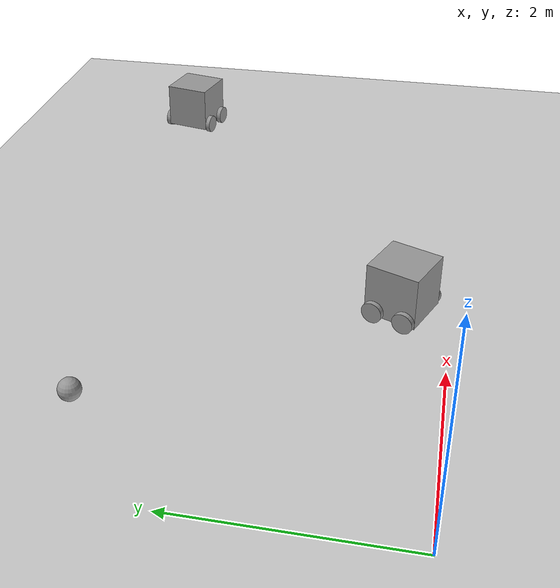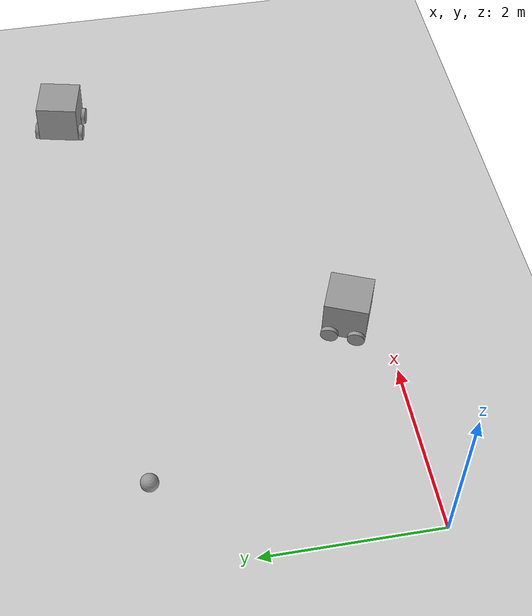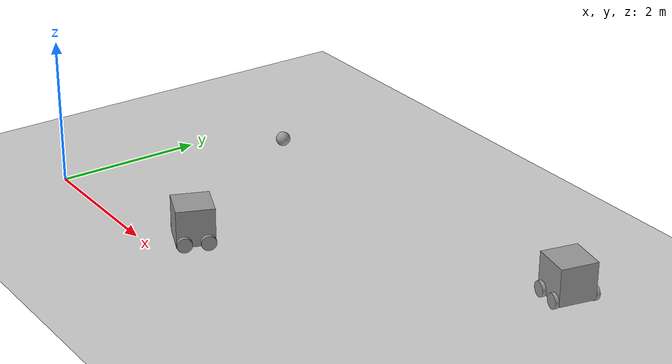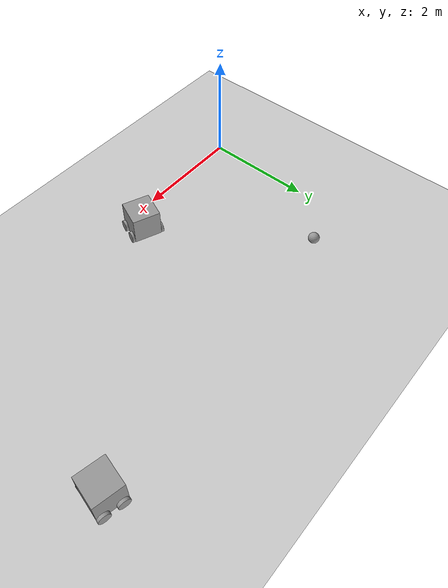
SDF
<sdf version="1.6">
 <world name="default">
  <model name="ground_plane">
   <static>1</static>
   <link name="link">
    <collision name="collision">
     <geometry><plane><normal>0 0 1</normal><size>100 100</size></plane></geometry>
     <surface><friction><ode><mu>100</mu><mu2>50</mu2></ode></friction></surface>
    </collision>
    <visual name="visual">
     <cast_shadows>0</cast_shadows>
     <geometry><plane><normal>0 0 1</normal><size>100 100</size></plane></geometry>
     <material>
      <script><uri>file://media/materials/scripts/gazebo.material</uri><name>Gazebo/Grey</name></script>
     </material>
    </visual>
   </link>
  </model>
  <model name="Model">
   <link name="link_0">
    <pose>0.074923 -0.135492 0.11601 0 0.01074 0</pose>
    <inertial>
     <mass>1</mass>
     <inertia>
      <ixx>0.166667</ixx>
      <ixy>0</ixy>
      <ixz>0</ixz>
      <iyy>0.166667</iyy>
      <iyz>0</iyz>
      <izz>0.166667</izz>
     </inertia>
    </inertial>
    <visual name="visual">
     <geometry><box><size>0.5 0.5 0.5</size></box></geometry>
     <material>
      <lighting>1</lighting>
      <script><uri>file://media/materials/scripts/gazebo.material</uri><name>Gazebo/Grey</name></script>
      <ambient>0.3 0.3 0.3 1</ambient>
      <diffuse>0.7 0.7 0.7 1</diffuse>
      <specular>0.01 0.01 0.01 1</specular>
      <emissive>0 0 0 1</emissive>
      <shader type="vertex"><normal_map>__default__</normal_map></shader>
     </material>
    </visual>
    <collision name="collision">
     <geometry><box><size>0.5 0.5 0.5</size></box></geometry>
     <surface>
      <friction>
       <ode><mu>1</mu><mu2>1</mu2><fdir1>0 0 0</fdir1><slip1>0</slip1><slip2>0</slip2></ode>
       <torsional>
        <coefficient>1</coefficient>
        <patch_radius>0</patch_radius>
        <surface_radius>0</surface_radius>
        <use_patch_radius>1</use_patch_radius>
        <ode><slip>0</slip></ode>
       </torsional>
      </friction>
      <bounce><restitution_coefficient>0</restitution_coefficient><threshold>1e+06</threshold></bounce>
      <contact>
       <collide_without_contact>0</collide_without_contact>
       <collide_without_contact_bitmask>1</collide_without_contact_bitmask>
       <collide_bitmask>1</collide_bitmask>
       <ode>
        <soft_cfm>0</soft_cfm>
        <soft_erp>0.2</soft_erp>
        <kp>1e+13</kp>
        <kd>1</kd>
        <max_vel>0.01</max_vel>
        <min_depth>0</min_depth>
       </ode>
       <bullet>
        <split_impulse>1</split_impulse>
        <split_impulse_penetration_threshold>-0.01</split_impulse_penetration_threshold>
        <soft_cfm>0</soft_cfm>
        <soft_erp>0.2</soft_erp>
        <kp>1e+13</kp>
        <kd>1</kd>
       </bullet>
      </contact>
     </surface>
    </collision>
   </link>
   <link name="link_1">
    <pose>-0.078239 -0.410505 -0.082356 1.5707 -0 0</pose>
    <inertial>
     <mass>1</mass>
     <inertia><ixx>0.145833</ixx><ixy>0</ixy><ixz>0</ixz><iyy>0.145833</iyy><iyz>0</iyz><izz>0.125</izz></inertia>
    </inertial>
    <visual name="visual">
     <geometry><cylinder><radius>0.1</radius><length>0.05</length></cylinder></geometry>
     <material>
      <lighting>1</lighting>
      <script><uri>file://media/materials/scripts/gazebo.material</uri><name>Gazebo/Grey</name></script>
      <ambient>0.3 0.3 0.3 1</ambient>
      <diffuse>0.7 0.7 0.7 1</diffuse>
      <specular>0.01 0.01 0.01 1</specular>
      <emissive>0 0 0 1</emissive>
      <shader type="vertex"><normal_map>__default__</normal_map></shader>
     </material>
    </visual>
    <collision name="collision">
     <geometry><cylinder><radius>0.1</radius><length>0.05</length></cylinder></geometry>
     <surface>
      <friction>
       <ode><mu>1</mu><mu2>1</mu2><fdir1>0 0 0</fdir1><slip1>0</slip1><slip2>0</slip2></ode>
       <torsional>
        <coefficient>1</coefficient>
        <patch_radius>0</patch_radius>
        <surface_radius>0</surface_radius>
        <use_patch_radius>1</use_patch_radius>
        <ode><slip>0</slip></ode>
       </torsional>
      </friction>
      <bounce><restitution_coefficient>0</restitution_coefficient><threshold>1e+06</threshold></bounce>
      <contact>
       <collide_without_contact>0</collide_without_contact>
       <collide_without_contact_bitmask>1</collide_without_contact_bitmask>
       <collide_bitmask>1</collide_bitmask>
       <ode>
        <soft_cfm>0</soft_cfm>
        <soft_erp>0.2</soft_erp>
        <kp>1e+13</kp>
        <kd>1</kd>
        <max_vel>0.01</max_vel>
        <min_depth>0</min_depth>
       </ode>
       <bullet>
        <split_impulse>1</split_impulse>
        <split_impulse_penetration_threshold>-0.01</split_impulse_penetration_threshold>
        <soft_cfm>0</soft_cfm>
        <soft_erp>0.2</soft_erp>
        <kp>1e+13</kp>
        <kd>1</kd>
       </bullet>
      </contact>
     </surface>
    </collision>
   </link>
   <link name="link_1_clone">
    <pose>0.227067 -0.410502 -0.085635 1.5707 -0 0</pose>
    <inertial>
     <mass>1</mass>
     <inertia><ixx>0.145833</ixx><ixy>0</ixy><ixz>0</ixz><iyy>0.145833</iyy><iyz>0</iyz><izz>0.125</izz></inertia>
    </inertial>
    <visual name="visual">
     <geometry><cylinder><radius>0.1</radius><length>0.05</length></cylinder></geometry>
     <material>
      <lighting>1</lighting>
      <script><uri>file://media/materials/scripts/gazebo.material</uri><name>Gazebo/Grey</name></script>
      <ambient>0.3 0.3 0.3 1</ambient>
      <diffuse>0.7 0.7 0.7 1</diffuse>
      <specular>0.01 0.01 0.01 1</specular>
      <emissive>0 0 0 1</emissive>
      <shader type="vertex"><normal_map>__default__</normal_map></shader>
     </material>
    </visual>
    <collision name="collision">
     <geometry><cylinder><radius>0.1</radius><length>0.05</length></cylinder></geometry>
     <surface>
      <friction>
       <ode><mu>1</mu><mu2>1</mu2><fdir1>0 0 0</fdir1><slip1>0</slip1><slip2>0</slip2></ode>
       <torsional>
        <coefficient>1</coefficient>
        <patch_radius>0</patch_radius>
        <surface_radius>0</surface_radius>
        <use_patch_radius>1</use_patch_radius>
        <ode><slip>0</slip></ode>
       </torsional>
      </friction>
      <bounce><restitution_coefficient>0</restitution_coefficient><threshold>1e+06</threshold></bounce>
      <contact>
       <collide_without_contact>0</collide_without_contact>
       <collide_without_contact_bitmask>1</collide_without_contact_bitmask>
       <collide_bitmask>1</collide_bitmask>
       <ode>
        <soft_cfm>0</soft_cfm>
        <soft_erp>0.2</soft_erp>
        <kp>1e+13</kp>
        <kd>1</kd>
        <max_vel>0.01</max_vel>
        <min_depth>0</min_depth>
       </ode>
       <bullet>
        <split_impulse>1</split_impulse>
        <split_impulse_penetration_threshold>-0.01</split_impulse_penetration_threshold>
        <soft_cfm>0</soft_cfm>
        <soft_erp>0.2</soft_erp>
        <kp>1e+13</kp>
        <kd>1</kd>
       </bullet>
      </contact>
     </surface>
    </collision>
   </link>
   <link name="link_1_clone_0">
    <pose>-0.077748 0.139518 -0.082385 1.5707 -0 0</pose>
    <inertial>
     <mass>1</mass>
     <inertia><ixx>0.145833</ixx><ixy>0</ixy><ixz>0</ixz><iyy>0.145833</iyy><iyz>0</iyz><izz>0.125</izz></inertia>
    </inertial>
    <visual name="visual">
     <geometry><cylinder><radius>0.1</radius><length>0.05</length></cylinder></geometry>
     <material>
      <lighting>1</lighting>
      <script><uri>file://media/materials/scripts/gazebo.material</uri><name>Gazebo/Grey</name></script>
      <ambient>0.3 0.3 0.3 1</ambient>
      <diffuse>0.7 0.7 0.7 1</diffuse>
      <specular>0.01 0.01 0.01 1</specular>
      <emissive>0 0 0 1</emissive>
      <shader type="vertex"><normal_map>__default__</normal_map></shader>
     </material>
    </visual>
    <collision name="collision">
     <geometry><cylinder><radius>0.1</radius><length>0.05</length></cylinder></geometry>
     <surface>
      <friction>
       <ode><mu>1</mu><mu2>1</mu2><fdir1>0 0 0</fdir1><slip1>0</slip1><slip2>0</slip2></ode>
       <torsional>
        <coefficient>1</coefficient>
        <patch_radius>0</patch_radius>
        <surface_radius>0</surface_radius>
        <use_patch_radius>1</use_patch_radius>
        <ode><slip>0</slip></ode>
       </torsional>
      </friction>
      <bounce><restitution_coefficient>0</restitution_coefficient><threshold>1e+06</threshold></bounce>
      <contact>
       <collide_without_contact>0</collide_without_contact>
       <collide_without_contact_bitmask>1</collide_without_contact_bitmask>
       <collide_bitmask>1</collide_bitmask>
       <ode>
        <soft_cfm>0</soft_cfm>
        <soft_erp>0.2</soft_erp>
        <kp>1e+13</kp>
        <kd>1</kd>
        <max_vel>0.01</max_vel>
        <min_depth>0</min_depth>
       </ode>
       <bullet>
        <split_impulse>1</split_impulse>
        <split_impulse_penetration_threshold>-0.01</split_impulse_penetration_threshold>
        <soft_cfm>0</soft_cfm>
        <soft_erp>0.2</soft_erp>
        <kp>1e+13</kp>
        <kd>1</kd>
       </bullet>
      </contact>
     </surface>
    </collision>
   </link>
   <link name="link_1_clone_1">
    <pose>0.227067 0.139518 -0.085635 1.5707 -0 0</pose>
    <inertial>
     <mass>1</mass>
     <inertia><ixx>0.145833</ixx><ixy>0</ixy><ixz>0</ixz><iyy>0.145833</iyy><iyz>0</iyz><izz>0.125</izz></inertia>
    </inertial>
    <visual name="visual">
     <geometry><cylinder><radius>0.1</radius><length>0.05</length></cylinder></geometry>
     <material>
      <lighting>1</lighting>
      <script><uri>file://media/materials/scripts/gazebo.material</uri><name>Gazebo/Grey</name></script>
      <ambient>0.3 0.3 0.3 1</ambient>
      <diffuse>0.7 0.7 0.7 1</diffuse>
      <specular>0.01 0.01 0.01 1</specular>
      <emissive>0 0 0 1</emissive>
      <shader type="vertex"><normal_map>__default__</normal_map></shader>
     </material>
    </visual>
    <collision name="collision">
     <geometry><cylinder><radius>0.1</radius><length>0.05</length></cylinder></geometry>
     <surface>
      <friction>
       <ode><mu>1</mu><mu2>1</mu2><fdir1>0 0 0</fdir1><slip1>0</slip1><slip2>0</slip2></ode>
       <torsional>
        <coefficient>1</coefficient>
        <patch_radius>0</patch_radius>
        <surface_radius>0</surface_radius>
        <use_patch_radius>1</use_patch_radius>
        <ode><slip>0</slip></ode>
       </torsional>
      </friction>
      <bounce><restitution_coefficient>0</restitution_coefficient><threshold>1e+06</threshold></bounce>
      <contact>
       <collide_without_contact>0</collide_without_contact>
       <collide_without_contact_bitmask>1</collide_without_contact_bitmask>
       <collide_bitmask>1</collide_bitmask>
       <ode>
        <soft_cfm>0</soft_cfm>
        <soft_erp>0.2</soft_erp>
        <kp>1e+13</kp>
        <kd>1</kd>
        <max_vel>0.01</max_vel>
        <min_depth>0</min_depth>
       </ode>
       <bullet>
        <split_impulse>1</split_impulse>
        <split_impulse_penetration_threshold>-0.01</split_impulse_penetration_threshold>
        <soft_cfm>0</soft_cfm>
        <soft_erp>0.2</soft_erp>
        <kp>1e+13</kp>
        <kd>1</kd>
       </bullet>
      </contact>
     </surface>
    </collision>
   </link>
   <joint name="link_0_JOINT_5" type="revolute">
    <parent>link_0</parent>
    <child>link_1</child>
    <axis>
     <xyz>0 0 1</xyz>
     <use_parent_model_frame>0</use_parent_model_frame>
     <limit>
      <lower>-1.79769e+308</lower>
      <upper>1.79769e+308</upper>
      <effort>-1</effort>
      <velocity>-1</velocity>
     </limit>
     <dynamics>
      <spring_reference>0</spring_reference>
      <spring_stiffness>0</spring_stiffness>
      <damping>0</damping>
     </dynamics>
    </axis>
    <physics>
     <ode><limit><cfm>0</cfm><erp>0.2</erp></limit><suspension><cfm>0</cfm><erp>0.2</erp></suspension></ode>
    </physics>
   </joint>
   <joint name="link_0_JOINT_6" type="revolute">
    <parent>link_0</parent>
    <child>link_1_clone</child>
    <axis>
     <xyz>0 0 1</xyz>
     <use_parent_model_frame>0</use_parent_model_frame>
     <limit>
      <lower>-1.79769e+308</lower>
      <upper>1.79769e+308</upper>
      <effort>-1</effort>
      <velocity>-1</velocity>
     </limit>
     <dynamics>
      <spring_reference>0</spring_reference>
      <spring_stiffness>0</spring_stiffness>
      <damping>0</damping>
     </dynamics>
    </axis>
    <physics>
     <ode><limit><cfm>0</cfm><erp>0.2</erp></limit><suspension><cfm>0</cfm><erp>0.2</erp></suspension></ode>
    </physics>
   </joint>
   <joint name="link_0_JOINT_7" type="revolute">
    <parent>link_0</parent>
    <child>link_1_clone_0</child>
    <axis>
     <xyz>0 0 1</xyz>
     <use_parent_model_frame>0</use_parent_model_frame>
     <limit>
      <lower>-1.79769e+308</lower>
      <upper>1.79769e+308</upper>
      <effort>-1</effort>
      <velocity>-1</velocity>
     </limit>
     <dynamics>
      <spring_reference>0</spring_reference>
      <spring_stiffness>0</spring_stiffness>
      <damping>0</damping>
      <friction>0</friction>
     </dynamics>
    </axis>
    <physics>
     <ode><limit><cfm>0</cfm><erp>0.2</erp></limit><suspension><cfm>0</cfm><erp>0.2</erp></suspension></ode>
    </physics>
   </joint>
   <joint name="link_0_JOINT_8" type="revolute">
    <parent>link_0</parent>
    <child>link_1_clone_1</child>
    <axis>
     <xyz>0 0 1</xyz>
     <use_parent_model_frame>0</use_parent_model_frame>
     <limit>
      <lower>-1.79769e+308</lower>
      <upper>1.79769e+308</upper>
      <effort>-1</effort>
      <velocity>-1</velocity>
     </limit>
     <dynamics>
      <spring_reference>0</spring_reference>
      <spring_stiffness>0</spring_stiffness>
      <damping>0</damping>
     </dynamics>
    </axis>
    <physics>
     <ode><limit><cfm>0</cfm><erp>0.2</erp></limit><suspension><cfm>0</cfm><erp>0.2</erp></suspension></ode>
    </physics>
   </joint>
   <static>0</static>
   <pose>2.52845 0.428304 0.283209 4.3e-05 -0.010726 1.1795</pose>
  </model>
  <model name="Model_0">
   <link name="link_0">
    <pose>0.074923 -0.135492 0.11601 0 0.01074 0</pose>
    <inertial>
     <mass>1</mass>
     <inertia>
      <ixx>0.166667</ixx>
      <ixy>0</ixy>
      <ixz>0</ixz>
      <iyy>0.166667</iyy>
      <iyz>0</iyz>
      <izz>0.166667</izz>
     </inertia>
    </inertial>
    <visual name="visual">
     <geometry><box><size>0.5 0.5 0.5</size></box></geometry>
     <material>
      <lighting>1</lighting>
      <script><uri>file://media/materials/scripts/gazebo.material</uri><name>Gazebo/Grey</name></script>
      <ambient>0.3 0.3 0.3 1</ambient>
      <diffuse>0.7 0.7 0.7 1</diffuse>
      <specular>0.01 0.01 0.01 1</specular>
      <emissive>0 0 0 1</emissive>
      <shader type="vertex"><normal_map>__default__</normal_map></shader>
     </material>
    </visual>
    <collision name="collision">
     <geometry><box><size>0.5 0.5 0.5</size></box></geometry>
     <surface>
      <friction>
       <ode><mu>1</mu><mu2>1</mu2><fdir1>0 0 0</fdir1><slip1>0</slip1><slip2>0</slip2></ode>
       <torsional>
        <coefficient>1</coefficient>
        <patch_radius>0</patch_radius>
        <surface_radius>0</surface_radius>
        <use_patch_radius>1</use_patch_radius>
        <ode><slip>0</slip></ode>
       </torsional>
      </friction>
      <bounce><restitution_coefficient>0</restitution_coefficient><threshold>1e+06</threshold></bounce>
      <contact>
       <collide_without_contact>0</collide_without_contact>
       <collide_without_contact_bitmask>1</collide_without_contact_bitmask>
       <collide_bitmask>1</collide_bitmask>
       <ode>
        <soft_cfm>0</soft_cfm>
        <soft_erp>0.2</soft_erp>
        <kp>1e+13</kp>
        <kd>1</kd>
        <max_vel>0.01</max_vel>
        <min_depth>0</min_depth>
       </ode>
       <bullet>
        <split_impulse>1</split_impulse>
        <split_impulse_penetration_threshold>-0.01</split_impulse_penetration_threshold>
        <soft_cfm>0</soft_cfm>
        <soft_erp>0.2</soft_erp>
        <kp>1e+13</kp>
        <kd>1</kd>
       </bullet>
      </contact>
     </surface>
    </collision>
   </link>
   <link name="link_1">
    <pose>-0.078239 -0.410505 -0.082356 1.5707 -0 0</pose>
    <inertial>
     <mass>1</mass>
     <inertia><ixx>0.145833</ixx><ixy>0</ixy><ixz>0</ixz><iyy>0.145833</iyy><iyz>0</iyz><izz>0.125</izz></inertia>
    </inertial>
    <visual name="visual">
     <geometry><cylinder><radius>0.1</radius><length>0.05</length></cylinder></geometry>
     <material>
      <lighting>1</lighting>
      <script><uri>file://media/materials/scripts/gazebo.material</uri><name>Gazebo/Grey</name></script>
      <ambient>0.3 0.3 0.3 1</ambient>
      <diffuse>0.7 0.7 0.7 1</diffuse>
      <specular>0.01 0.01 0.01 1</specular>
      <emissive>0 0 0 1</emissive>
      <shader type="vertex"><normal_map>__default__</normal_map></shader>
     </material>
    </visual>
    <collision name="collision">
     <geometry><cylinder><radius>0.1</radius><length>0.05</length></cylinder></geometry>
     <surface>
      <friction>
       <ode><mu>1</mu><mu2>1</mu2><fdir1>0 0 0</fdir1><slip1>0</slip1><slip2>0</slip2></ode>
       <torsional>
        <coefficient>1</coefficient>
        <patch_radius>0</patch_radius>
        <surface_radius>0</surface_radius>
        <use_patch_radius>1</use_patch_radius>
        <ode><slip>0</slip></ode>
       </torsional>
      </friction>
      <bounce><restitution_coefficient>0</restitution_coefficient><threshold>1e+06</threshold></bounce>
      <contact>
       <collide_without_contact>0</collide_without_contact>
       <collide_without_contact_bitmask>1</collide_without_contact_bitmask>
       <collide_bitmask>1</collide_bitmask>
       <ode>
        <soft_cfm>0</soft_cfm>
        <soft_erp>0.2</soft_erp>
        <kp>1e+13</kp>
        <kd>1</kd>
        <max_vel>0.01</max_vel>
        <min_depth>0</min_depth>
       </ode>
       <bullet>
        <split_impulse>1</split_impulse>
        <split_impulse_penetration_threshold>-0.01</split_impulse_penetration_threshold>
        <soft_cfm>0</soft_cfm>
        <soft_erp>0.2</soft_erp>
        <kp>1e+13</kp>
        <kd>1</kd>
       </bullet>
      </contact>
     </surface>
    </collision>
   </link>
   <link name="link_1_clone">
    <pose>0.227067 -0.410502 -0.085635 1.5707 -0 0</pose>
    <inertial>
     <mass>1</mass>
     <inertia><ixx>0.145833</ixx><ixy>0</ixy><ixz>0</ixz><iyy>0.145833</iyy><iyz>0</iyz><izz>0.125</izz></inertia>
    </inertial>
    <visual name="visual">
     <geometry><cylinder><radius>0.1</radius><length>0.05</length></cylinder></geometry>
     <material>
      <lighting>1</lighting>
      <script><uri>file://media/materials/scripts/gazebo.material</uri><name>Gazebo/Grey</name></script>
      <ambient>0.3 0.3 0.3 1</ambient>
      <diffuse>0.7 0.7 0.7 1</diffuse>
      <specular>0.01 0.01 0.01 1</specular>
      <emissive>0 0 0 1</emissive>
      <shader type="vertex"><normal_map>__default__</normal_map></shader>
     </material>
    </visual>
    <collision name="collision">
     <geometry><cylinder><radius>0.1</radius><length>0.05</length></cylinder></geometry>
     <surface>
      <friction>
       <ode><mu>1</mu><mu2>1</mu2><fdir1>0 0 0</fdir1><slip1>0</slip1><slip2>0</slip2></ode>
       <torsional>
        <coefficient>1</coefficient>
        <patch_radius>0</patch_radius>
        <surface_radius>0</surface_radius>
        <use_patch_radius>1</use_patch_radius>
        <ode><slip>0</slip></ode>
       </torsional>
      </friction>
      <bounce><restitution_coefficient>0</restitution_coefficient><threshold>1e+06</threshold></bounce>
      <contact>
       <collide_without_contact>0</collide_without_contact>
       <collide_without_contact_bitmask>1</collide_without_contact_bitmask>
       <collide_bitmask>1</collide_bitmask>
       <ode>
        <soft_cfm>0</soft_cfm>
        <soft_erp>0.2</soft_erp>
        <kp>1e+13</kp>
        <kd>1</kd>
        <max_vel>0.01</max_vel>
        <min_depth>0</min_depth>
       </ode>
       <bullet>
        <split_impulse>1</split_impulse>
        <split_impulse_penetration_threshold>-0.01</split_impulse_penetration_threshold>
        <soft_cfm>0</soft_cfm>
        <soft_erp>0.2</soft_erp>
        <kp>1e+13</kp>
        <kd>1</kd>
       </bullet>
      </contact>
     </surface>
    </collision>
   </link>
   <link name="link_1_clone_0">
    <pose>-0.077748 0.139518 -0.082385 1.5707 -0 0</pose>
    <inertial>
     <mass>1</mass>
     <inertia><ixx>0.145833</ixx><ixy>0</ixy><ixz>0</ixz><iyy>0.145833</iyy><iyz>0</iyz><izz>0.125</izz></inertia>
    </inertial>
    <visual name="visual">
     <geometry><cylinder><radius>0.1</radius><length>0.05</length></cylinder></geometry>
     <material>
      <lighting>1</lighting>
      <script><uri>file://media/materials/scripts/gazebo.material</uri><name>Gazebo/Grey</name></script>
      <ambient>0.3 0.3 0.3 1</ambient>
      <diffuse>0.7 0.7 0.7 1</diffuse>
      <specular>0.01 0.01 0.01 1</specular>
      <emissive>0 0 0 1</emissive>
      <shader type="vertex"><normal_map>__default__</normal_map></shader>
     </material>
    </visual>
    <collision name="collision">
     <geometry><cylinder><radius>0.1</radius><length>0.05</length></cylinder></geometry>
     <surface>
      <friction>
       <ode><mu>1</mu><mu2>1</mu2><fdir1>0 0 0</fdir1><slip1>0</slip1><slip2>0</slip2></ode>
       <torsional>
        <coefficient>1</coefficient>
        <patch_radius>0</patch_radius>
        <surface_radius>0</surface_radius>
        <use_patch_radius>1</use_patch_radius>
        <ode><slip>0</slip></ode>
       </torsional>
      </friction>
      <bounce><restitution_coefficient>0</restitution_coefficient><threshold>1e+06</threshold></bounce>
      <contact>
       <collide_without_contact>0</collide_without_contact>
       <collide_without_contact_bitmask>1</collide_without_contact_bitmask>
       <collide_bitmask>1</collide_bitmask>
       <ode>
        <soft_cfm>0</soft_cfm>
        <soft_erp>0.2</soft_erp>
        <kp>1e+13</kp>
        <kd>1</kd>
        <max_vel>0.01</max_vel>
        <min_depth>0</min_depth>
       </ode>
       <bullet>
        <split_impulse>1</split_impulse>
        <split_impulse_penetration_threshold>-0.01</split_impulse_penetration_threshold>
        <soft_cfm>0</soft_cfm>
        <soft_erp>0.2</soft_erp>
        <kp>1e+13</kp>
        <kd>1</kd>
       </bullet>
      </contact>
     </surface>
    </collision>
   </link>
   <link name="link_1_clone_1">
    <pose>0.227067 0.139518 -0.085635 1.5707 -0 0</pose>
    <inertial>
     <mass>1</mass>
     <inertia><ixx>0.145833</ixx><ixy>0</ixy><ixz>0</ixz><iyy>0.145833</iyy><iyz>0</iyz><izz>0.125</izz></inertia>
    </inertial>
    <visual name="visual">
     <geometry><cylinder><radius>0.1</radius><length>0.05</length></cylinder></geometry>
     <material>
      <lighting>1</lighting>
      <script><uri>file://media/materials/scripts/gazebo.material</uri><name>Gazebo/Grey</name></script>
      <ambient>0.3 0.3 0.3 1</ambient>
      <diffuse>0.7 0.7 0.7 1</diffuse>
      <specular>0.01 0.01 0.01 1</specular>
      <emissive>0 0 0 1</emissive>
      <shader type="vertex"><normal_map>__default__</normal_map></shader>
     </material>
    </visual>
    <collision name="collision">
     <geometry><cylinder><radius>0.1</radius><length>0.05</length></cylinder></geometry>
     <surface>
      <friction>
       <ode><mu>1</mu><mu2>1</mu2><fdir1>0 0 0</fdir1><slip1>0</slip1><slip2>0</slip2></ode>
       <torsional>
        <coefficient>1</coefficient>
        <patch_radius>0</patch_radius>
        <surface_radius>0</surface_radius>
        <use_patch_radius>1</use_patch_radius>
        <ode><slip>0</slip></ode>
       </torsional>
      </friction>
      <bounce><restitution_coefficient>0</restitution_coefficient><threshold>1e+06</threshold></bounce>
      <contact>
       <collide_without_contact>0</collide_without_contact>
       <collide_without_contact_bitmask>1</collide_without_contact_bitmask>
       <collide_bitmask>1</collide_bitmask>
       <ode>
        <soft_cfm>0</soft_cfm>
        <soft_erp>0.2</soft_erp>
        <kp>1e+13</kp>
        <kd>1</kd>
        <max_vel>0.01</max_vel>
        <min_depth>0</min_depth>
       </ode>
       <bullet>
        <split_impulse>1</split_impulse>
        <split_impulse_penetration_threshold>-0.01</split_impulse_penetration_threshold>
        <soft_cfm>0</soft_cfm>
        <soft_erp>0.2</soft_erp>
        <kp>1e+13</kp>
        <kd>1</kd>
       </bullet>
      </contact>
     </surface>
    </collision>
   </link>
   <joint name="link_0_JOINT_5" type="revolute">
    <parent>link_0</parent>
    <child>link_1</child>
    <axis>
     <xyz>0 0 1</xyz>
     <use_parent_model_frame>0</use_parent_model_frame>
     <limit>
      <lower>-1.79769e+308</lower>
      <upper>1.79769e+308</upper>
      <effort>-1</effort>
      <velocity>-1</velocity>
     </limit>
     <dynamics>
      <spring_reference>0</spring_reference>
      <spring_stiffness>0</spring_stiffness>
      <damping>0</damping>
     </dynamics>
    </axis>
    <physics>
     <ode><limit><cfm>0</cfm><erp>0.2</erp></limit><suspension><cfm>0</cfm><erp>0.2</erp></suspension></ode>
    </physics>
   </joint>
   <joint name="link_0_JOINT_6" type="revolute">
    <parent>link_0</parent>
    <child>link_1_clone</child>
    <axis>
     <xyz>0 0 1</xyz>
     <use_parent_model_frame>0</use_parent_model_frame>
     <limit>
      <lower>-1.79769e+308</lower>
      <upper>1.79769e+308</upper>
      <effort>-1</effort>
      <velocity>-1</velocity>
     </limit>
     <dynamics>
      <spring_reference>0</spring_reference>
      <spring_stiffness>0</spring_stiffness>
      <damping>0</damping>
     </dynamics>
    </axis>
    <physics>
     <ode><limit><cfm>0</cfm><erp>0.2</erp></limit><suspension><cfm>0</cfm><erp>0.2</erp></suspension></ode>
    </physics>
   </joint>
   <joint name="link_0_JOINT_7" type="revolute">
    <parent>link_0</parent>
    <child>link_1_clone_0</child>
    <axis>
     <xyz>0 0 1</xyz>
     <use_parent_model_frame>0</use_parent_model_frame>
     <limit>
      <lower>-1.79769e+308</lower>
      <upper>1.79769e+308</upper>
      <effort>-1</effort>
      <velocity>-1</velocity>
     </limit>
     <dynamics>
      <spring_reference>0</spring_reference>
      <spring_stiffness>0</spring_stiffness>
      <damping>0</damping>
      <friction>0</friction>
     </dynamics>
    </axis>
    <physics>
     <ode><limit><cfm>0</cfm><erp>0.2</erp></limit><suspension><cfm>0</cfm><erp>0.2</erp></suspension></ode>
    </physics>
   </joint>
   <joint name="link_0_JOINT_8" type="revolute">
    <parent>link_0</parent>
    <child>link_1_clone_1</child>
    <axis>
     <xyz>0 0 1</xyz>
     <use_parent_model_frame>0</use_parent_model_frame>
     <limit>
      <lower>-1.79769e+308</lower>
      <upper>1.79769e+308</upper>
      <effort>-1</effort>
      <velocity>-1</velocity>
     </limit>
     <dynamics>
      <spring_reference>0</spring_reference>
      <spring_stiffness>0</spring_stiffness>
      <damping>0</damping>
     </dynamics>
    </axis>
    <physics>
     <ode><limit><cfm>0</cfm><erp>0.2</erp></limit><suspension><cfm>0</cfm><erp>0.2</erp></suspension></ode>
    </physics>
   </joint>
   <static>0</static>
   <pose>6.35212 3.4959 0.283207 3.4e-05 -0.010739 -0.218597</pose>
  </model>
  <model name="my_ball">
   <link name="link_0">
    <pose>1e-06 0 0 0 -0 0</pose>
    <inertial>
     <mass>1</mass>
     <inertia><ixx>0.1</ixx><ixy>0</ixy><ixz>0</ixz><iyy>0.1</iyy><iyz>0</iyz><izz>0.1</izz></inertia>
    </inertial>
    <visual name="visual">
     <geometry><sphere><radius>0.1</radius></sphere></geometry>
     <material>
      <lighting>1</lighting>
      <script><uri>file://media/materials/scripts/gazebo.material</uri><name>Gazebo/Grey</name></script>
      <ambient>1 1 1 1</ambient>
      <diffuse>1 1 1 1</diffuse>
      <specular>1 1 1 1</specular>
      <emissive>1 1 1 1</emissive>
      <shader type="vertex"><normal_map>__default__</normal_map></shader>
     </material>
    </visual>
    <collision name="collision">
     <geometry><sphere><radius>0.1</radius></sphere></geometry>
     <surface>
      <friction>
       <ode><mu>1</mu><mu2>1</mu2><fdir1>0 0 0</fdir1><slip1>0</slip1><slip2>0</slip2></ode>
       <torsional>
        <coefficient>1</coefficient>
        <patch_radius>0</patch_radius>
        <surface_radius>0</surface_radius>
        <use_patch_radius>1</use_patch_radius>
        <ode><slip>0</slip></ode>
       </torsional>
      </friction>
      <bounce><restitution_coefficient>0</restitution_coefficient><threshold>1e+06</threshold></bounce>
      <contact>
       <collide_without_contact>0</collide_without_contact>
       <collide_without_contact_bitmask>1</collide_without_contact_bitmask>
       <collide_bitmask>1</collide_bitmask>
       <ode>
        <soft_cfm>0</soft_cfm>
        <soft_erp>0.2</soft_erp>
        <kp>1e+13</kp>
        <kd>1</kd>
        <max_vel>0.01</max_vel>
        <min_depth>0</min_depth>
       </ode>
       <bullet>
        <split_impulse>1</split_impulse>
        <split_impulse_penetration_threshold>-0.01</split_impulse_penetration_threshold>
        <soft_cfm>0</soft_cfm>
        <soft_erp>0.2</soft_erp>
        <kp>1e+13</kp>
        <kd>1</kd>
       </bullet>
      </contact>
     </surface>
    </collision>
   </link>
   <static>0</static>
   <pose>0.934381 2.95465 0.2 0 -0 0</pose>
  </model>
 </world>
</sdf>
